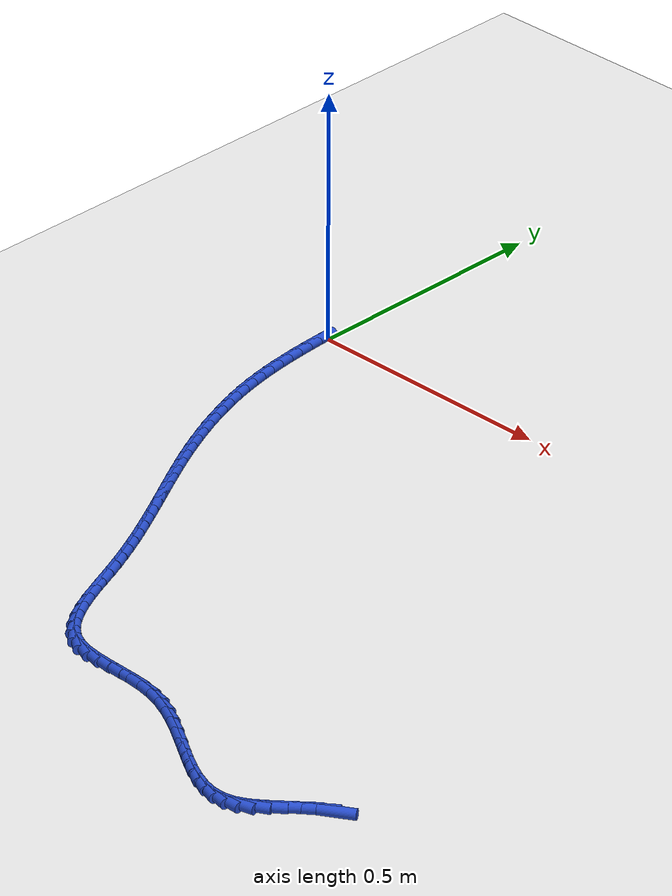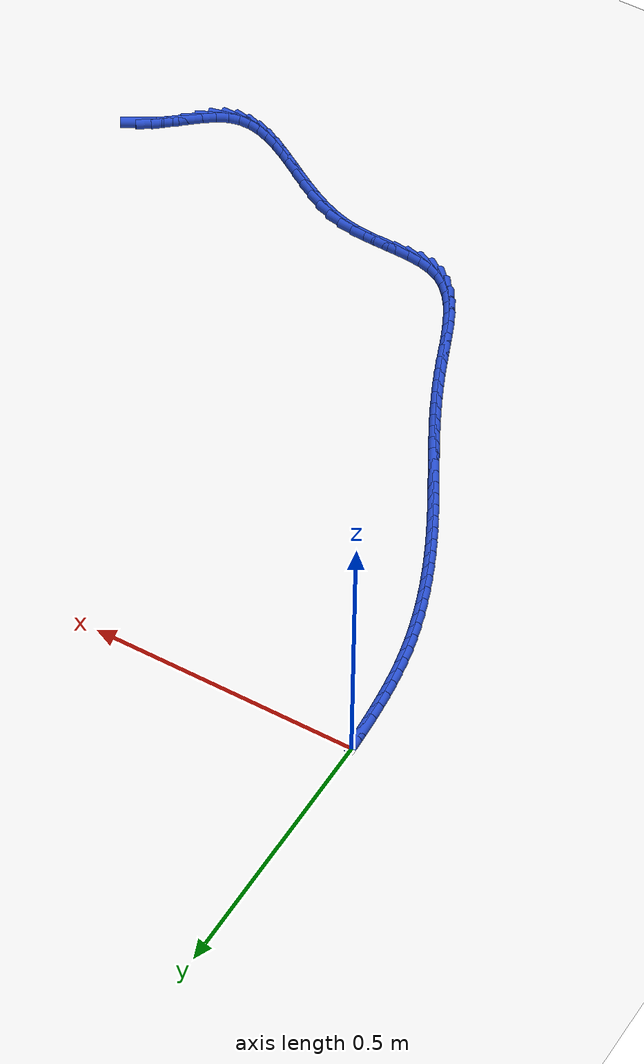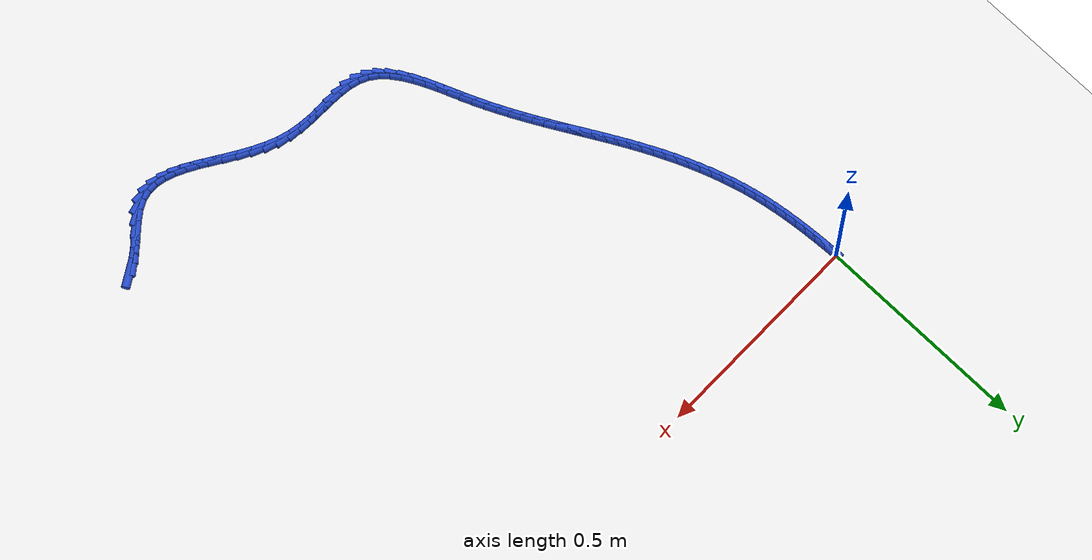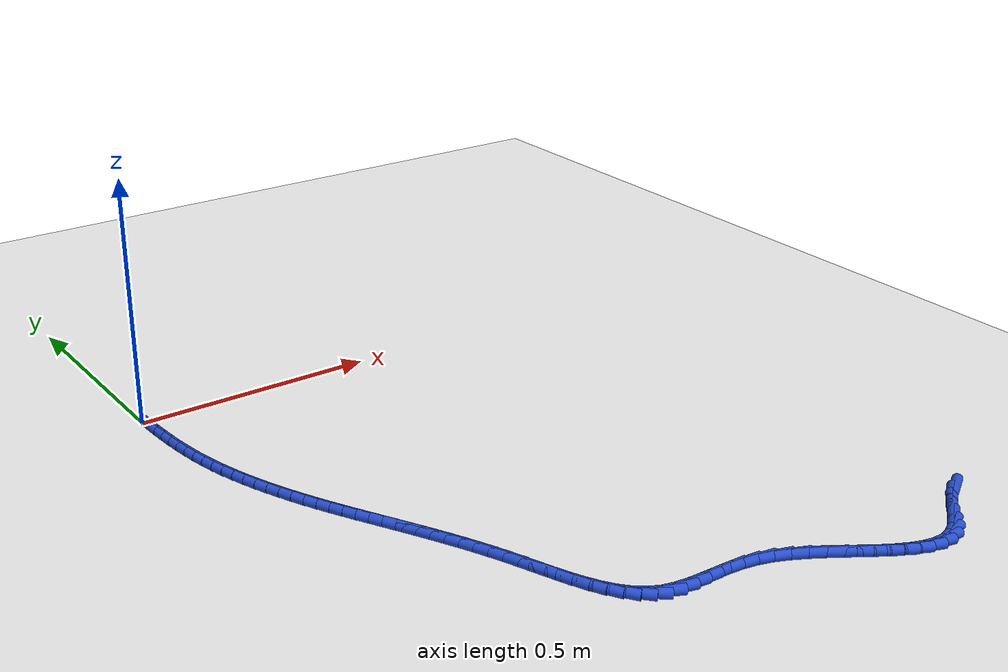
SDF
<sdf version="1.6">
 <world name="default">
  <model name="ground_plane">
   <static>1</static>
   <link name="link">
    <collision name="collision">
     <geometry><plane><normal>0 0 1</normal><size>100 100</size></plane></geometry>
     <surface><friction><ode><mu>100</mu><mu2>50</mu2></ode></friction></surface>
    </collision>
    <visual name="visual">
     <cast_shadows>0</cast_shadows>
     <geometry><plane><normal>0 0 1</normal><size>100 100</size></plane></geometry>
     <material>
      <script><uri>file://media/materials/scripts/gazebo.material</uri><name>Gazebo/WhiteGlow</name></script>
     </material>
    </visual>
   </link>
  </model>
  <model name="line">
   <link name="link_202">
    <pose>1.084743514705425 -1.0791629400889569 0.01 0 1.57 0.5356293100034848</pose>
    <collision name="collision">
     <geometry><cylinder><radius>0.01</radius><length>0.08</length></cylinder></geometry>
    </collision>
    <visual name="visual">
     <material>
      <script><name>Gazebo/Blue</name><uri>file://media/materials/scripts/gazebo.material</uri></script>
     </material>
     <geometry><cylinder><radius>0.01</radius><length>0.08</length></cylinder></geometry>
    </visual>
   </link>
   <link name="link_203">
    <pose>1.0611634195019979 -1.0931578200143086 0.01 0 1.57 0.6569418763664222</pose>
    <collision name="collision">
     <geometry><cylinder><radius>0.01</radius><length>0.08</length></cylinder></geometry>
    </collision>
    <visual name="visual">
     <material>
      <script><name>Gazebo/Blue</name><uri>file://media/materials/scripts/gazebo.material</uri></script>
     </material>
     <geometry><cylinder><radius>0.01</radius><length>0.08</length></cylinder></geometry>
    </visual>
   </link>
   <link name="link_204">
    <pose>1.038638782207033 -1.1105291885735058 0.01 0 1.57 0.711244575524754</pose>
    <collision name="collision">
     <geometry><cylinder><radius>0.01</radius><length>0.08</length></cylinder></geometry>
    </collision>
    <visual name="visual">
     <material>
      <script><name>Gazebo/Blue</name><uri>file://media/materials/scripts/gazebo.material</uri></script>
     </material>
     <geometry><cylinder><radius>0.01</radius><length>0.08</length></cylinder></geometry>
    </visual>
   </link>
   <link name="link_205">
    <pose>1.016847159753608 -1.1293069215267824 0.01 0 1.57 0.7055813358502889</pose>
    <collision name="collision">
     <geometry><cylinder><radius>0.01</radius><length>0.08</length></cylinder></geometry>
    </collision>
    <visual name="visual">
     <material>
      <script><name>Gazebo/Blue</name><uri>file://media/materials/scripts/gazebo.material</uri></script>
     </material>
     <geometry><cylinder><radius>0.01</radius><length>0.08</length></cylinder></geometry>
    </visual>
   </link>
   <link name="link_206">
    <pose>0.9954661090748025 -1.14752089463437 0.01 0 1.57 0.6347395699183197</pose>
    <collision name="collision">
     <geometry><cylinder><radius>0.01</radius><length>0.08</length></cylinder></geometry>
    </collision>
    <visual name="visual">
     <material>
      <script><name>Gazebo/Blue</name><uri>file://media/materials/scripts/gazebo.material</uri></script>
     </material>
     <geometry><cylinder><radius>0.01</radius><length>0.08</length></cylinder></geometry>
    </visual>
   </link>
   <link name="link_207">
    <pose>0.9741731871036939 -1.1632009836565023 0.01 0 1.57 0.47888440317415676</pose>
    <collision name="collision">
     <geometry><cylinder><radius>0.01</radius><length>0.08</length></cylinder></geometry>
    </collision>
    <visual name="visual">
     <material>
      <script><name>Gazebo/Blue</name><uri>file://media/materials/scripts/gazebo.material</uri></script>
     </material>
     <geometry><cylinder><radius>0.01</radius><length>0.08</length></cylinder></geometry>
    </visual>
   </link>
   <link name="link_208">
    <pose>0.9526460305774485 -1.1743777477755124 0.01 0 1.57 0.23775193257106658</pose>
    <collision name="collision">
     <geometry><cylinder><radius>0.01</radius><length>0.08</length></cylinder></geometry>
    </collision>
    <visual name="visual">
     <material>
      <script><name>Gazebo/Blue</name><uri>file://media/materials/scripts/gazebo.material</uri></script>
     </material>
     <geometry><cylinder><radius>0.01</radius><length>0.08</length></cylinder></geometry>
    </visual>
   </link>
   <link name="link_209">
    <pose>0.9306358248337919 -1.179711597873813 0.01 0 1.57 -0.002389771905242839</pose>
    <collision name="collision">
     <geometry><cylinder><radius>0.01</radius><length>0.08</length></cylinder></geometry>
    </collision>
    <visual name="visual">
     <material>
      <script><name>Gazebo/Blue</name><uri>file://media/materials/scripts/gazebo.material</uri></script>
     </material>
     <geometry><cylinder><radius>0.01</radius><length>0.08</length></cylinder></geometry>
    </visual>
   </link>
   <link name="link_210">
    <pose>0.9081033369702856 -1.1796577502648535 0.01 0 1.57 -0.1997865084663508</pose>
    <collision name="collision">
     <geometry><cylinder><radius>0.01</radius><length>0.08</length></cylinder></geometry>
    </collision>
    <visual name="visual">
     <material>
      <script><name>Gazebo/Blue</name><uri>file://media/materials/scripts/gazebo.material</uri></script>
     </material>
     <geometry><cylinder><radius>0.01</radius><length>0.08</length></cylinder></geometry>
    </visual>
   </link>
   <link name="link_211">
    <pose>0.8850464188764705 -1.1749890060848833 0.01 0 1.57 -0.3463354275869764</pose>
    <collision name="collision">
     <geometry><cylinder><radius>0.01</radius><length>0.08</length></cylinder></geometry>
    </collision>
    <visual name="visual">
     <material>
      <script><name>Gazebo/Blue</name><uri>file://media/materials/scripts/gazebo.material</uri></script>
     </material>
     <geometry><cylinder><radius>0.01</radius><length>0.08</length></cylinder></geometry>
    </visual>
   </link>
   <link name="link_212">
    <pose>0.8614629224418897 -1.1664781664701505 0.01 0 1.57 -0.44773119129558614</pose>
    <collision name="collision">
     <geometry><cylinder><radius>0.01</radius><length>0.08</length></cylinder></geometry>
    </collision>
    <visual name="visual">
     <material>
      <script><name>Gazebo/Blue</name><uri>file://media/materials/scripts/gazebo.material</uri></script>
     </material>
     <geometry><cylinder><radius>0.01</radius><length>0.08</length></cylinder></geometry>
    </visual>
   </link>
   <link name="link_213">
    <pose>0.8373506995560841 -1.1548980325569036 0.01 0 1.57 -0.5128481769981719</pose>
    <collision name="collision">
     <geometry><cylinder><radius>0.01</radius><length>0.08</length></cylinder></geometry>
    </collision>
    <visual name="visual">
     <material>
      <script><name>Gazebo/Blue</name><uri>file://media/materials/scripts/gazebo.material</uri></script>
     </material>
     <geometry><cylinder><radius>0.01</radius><length>0.08</length></cylinder></geometry>
    </visual>
   </link>
   <link name="link_214">
    <pose>0.8127076021085967 -1.141021405481391 0.01 0 1.57 -0.5489805522195436</pose>
    <collision name="collision">
     <geometry><cylinder><radius>0.01</radius><length>0.08</length></cylinder></geometry>
    </collision>
    <visual name="visual">
     <material>
      <script><name>Gazebo/Blue</name><uri>file://media/materials/scripts/gazebo.material</uri></script>
     </material>
     <geometry><cylinder><radius>0.01</radius><length>0.08</length></cylinder></geometry>
    </visual>
   </link>
   <link name="link_215">
    <pose>0.787531481988969 -1.1256210863798615 0.01 0 1.57 -0.5608797571258992</pose>
    <collision name="collision">
     <geometry><cylinder><radius>0.01</radius><length>0.08</length></cylinder></geometry>
    </collision>
    <visual name="visual">
     <material>
      <script><name>Gazebo/Blue</name><uri>file://media/materials/scripts/gazebo.material</uri></script>
     </material>
     <geometry><cylinder><radius>0.01</radius><length>0.08</length></cylinder></geometry>
    </visual>
   </link>
   <link name="link_216">
    <pose>0.7618201910867424 -1.1094698763885629 0.01 0 1.57 -0.5510000735567151</pose>
    <collision name="collision">
     <geometry><cylinder><radius>0.01</radius><length>0.08</length></cylinder></geometry>
    </collision>
    <visual name="visual">
     <material>
      <script><name>Gazebo/Blue</name><uri>file://media/materials/scripts/gazebo.material</uri></script>
     </material>
     <geometry><cylinder><radius>0.01</radius><length>0.08</length></cylinder></geometry>
    </visual>
   </link>
   <link name="link_217">
    <pose>0.7355715812914605 -1.0933405766437447 0.01 0 1.57 -0.5199088531335979</pose>
    <collision name="collision">
     <geometry><cylinder><radius>0.01</radius><length>0.08</length></cylinder></geometry>
    </collision>
    <visual name="visual">
     <material>
      <script><name>Gazebo/Blue</name><uri>file://media/materials/scripts/gazebo.material</uri></script>
     </material>
     <geometry><cylinder><radius>0.01</radius><length>0.08</length></cylinder></geometry>
    </visual>
   </link>
   <link name="link_218">
    <pose>0.7087835044926634 -1.0780059882816544 0.01 0 1.57 -0.466635622204465</pose>
    <collision name="collision">
     <geometry><cylinder><radius>0.01</radius><length>0.08</length></cylinder></geometry>
    </collision>
    <visual name="visual">
     <material>
      <script><name>Gazebo/Blue</name><uri>file://media/materials/scripts/gazebo.material</uri></script>
     </material>
     <geometry><cylinder><radius>0.01</radius><length>0.08</length></cylinder></geometry>
    </visual>
   </link>
   <link name="link_219">
    <pose>0.6814538125798948 -1.0642389124385414 0.01 0 1.57 -0.38905563143080746</pose>
    <collision name="collision">
     <geometry><cylinder><radius>0.01</radius><length>0.08</length></cylinder></geometry>
    </collision>
    <visual name="visual">
     <material>
      <script><name>Gazebo/Blue</name><uri>file://media/materials/scripts/gazebo.material</uri></script>
     </material>
     <geometry><cylinder><radius>0.01</radius><length>0.08</length></cylinder></geometry>
    </visual>
   </link>
   <link name="link_220">
    <pose>0.6535803574426953 -1.0528121502506533 0.01 0 1.57 -0.2846203969204903</pose>
    <collision name="collision">
     <geometry><cylinder><radius>0.01</radius><length>0.08</length></cylinder></geometry>
    </collision>
    <visual name="visual">
     <material>
      <script><name>Gazebo/Blue</name><uri>file://media/materials/scripts/gazebo.material</uri></script>
     </material>
     <geometry><cylinder><radius>0.01</radius><length>0.08</length></cylinder></geometry>
    </visual>
   </link>
   <link name="link_221">
    <pose>0.6251611556473456 -1.044497730170559 0.01 0 1.57 -0.16750694427969978</pose>
    <collision name="collision">
     <geometry><cylinder><radius>0.01</radius><length>0.08</length></cylinder></geometry>
    </collision>
    <visual name="visual">
     <material>
      <script><name>Gazebo/Blue</name><uri>file://media/materials/scripts/gazebo.material</uri></script>
     </material>
     <geometry><cylinder><radius>0.01</radius><length>0.08</length></cylinder></geometry>
    </visual>
   </link>
   <link name="link_222">
    <pose>0.5962904979343345 -1.0396159502832012 0.01 0 1.57 -0.08058516927562474</pose>
    <collision name="collision">
     <geometry><cylinder><radius>0.01</radius><length>0.08</length></cylinder></geometry>
    </collision>
    <visual name="visual">
     <material>
      <script><name>Gazebo/Blue</name><uri>file://media/materials/scripts/gazebo.material</uri></script>
     </material>
     <geometry><cylinder><radius>0.01</radius><length>0.08</length></cylinder></geometry>
    </visual>
   </link>
   <link name="link_223">
    <pose>0.5673207159215206 -1.0372763488684966 0.01 0 1.57 -0.030980431589471866</pose>
    <collision name="collision">
     <geometry><cylinder><radius>0.01</radius><length>0.08</length></cylinder></geometry>
    </collision>
    <visual name="visual">
     <material>
      <script><name>Gazebo/Blue</name><uri>file://media/materials/scripts/gazebo.material</uri></script>
     </material>
     <geometry><cylinder><radius>0.01</radius><length>0.08</length></cylinder></geometry>
    </visual>
   </link>
   <link name="link_224">
    <pose>0.5386469206163207 -1.0363877380040138 0.01 0 1.57 -0.01889543703541139</pose>
    <collision name="collision">
     <geometry><cylinder><radius>0.01</radius><length>0.08</length></cylinder></geometry>
    </collision>
    <visual name="visual">
     <material>
      <script><name>Gazebo/Blue</name><uri>file://media/materials/scripts/gazebo.material</uri></script>
     </material>
     <geometry><cylinder><radius>0.01</radius><length>0.08</length></cylinder></geometry>
    </visual>
   </link>
   <link name="link_225">
    <pose>0.5106642230261554 -1.0358589297673224 0.01 0 1.57 -0.04681921885935837</pose>
    <collision name="collision">
     <geometry><cylinder><radius>0.01</radius><length>0.08</length></cylinder></geometry>
    </collision>
    <visual name="visual">
     <material>
      <script><name>Gazebo/Blue</name><uri>file://media/materials/scripts/gazebo.material</uri></script>
     </material>
     <geometry><cylinder><radius>0.01</radius><length>0.08</length></cylinder></geometry>
    </visual>
   </link>
   <link name="link_226">
    <pose>0.4837677341584423 -1.0345987362359905 0.01 0 1.57 -0.12070665743941504</pose>
    <collision name="collision">
     <geometry><cylinder><radius>0.01</radius><length>0.08</length></cylinder></geometry>
    </collision>
    <visual name="visual">
     <material>
      <script><name>Gazebo/Blue</name><uri>file://media/materials/scripts/gazebo.material</uri></script>
     </material>
     <geometry><cylinder><radius>0.01</radius><length>0.08</length></cylinder></geometry>
    </visual>
   </link>
   <link name="link_227">
    <pose>0.4583525650205994 -1.031515969487588 0.01 0 1.57 -0.2494455983019754</pose>
    <collision name="collision">
     <geometry><cylinder><radius>0.01</radius><length>0.08</length></cylinder></geometry>
    </collision>
    <visual name="visual">
     <material>
      <script><name>Gazebo/Blue</name><uri>file://media/materials/scripts/gazebo.material</uri></script>
     </material>
     <geometry><cylinder><radius>0.01</radius><length>0.08</length></cylinder></geometry>
    </visual>
   </link>
   <link name="link_228">
    <pose>0.4348138266200466 -1.0255194415996831 0.01 0 1.57 -0.43880900415434265</pose>
    <collision name="collision">
     <geometry><cylinder><radius>0.01</radius><length>0.08</length></cylinder></geometry>
    </collision>
    <visual name="visual">
     <material>
      <script><name>Gazebo/Blue</name><uri>file://media/materials/scripts/gazebo.material</uri></script>
     </material>
     <geometry><cylinder><radius>0.01</radius><length>0.08</length></cylinder></geometry>
    </visual>
   </link>
   <link name="link_229">
    <pose>0.41353955194666714 -1.0155348632685117 0.01 0 1.57 -0.648946708486714</pose>
    <collision name="collision">
     <geometry><cylinder><radius>0.01</radius><length>0.08</length></cylinder></geometry>
    </collision>
    <visual name="visual">
     <material>
      <script><name>Gazebo/Blue</name><uri>file://media/materials/scripts/gazebo.material</uri></script>
     </material>
     <geometry><cylinder><radius>0.01</radius><length>0.08</length></cylinder></geometry>
    </visual>
   </link>
   <link name="link_230">
    <pose>0.39462486918274065 -1.0011872492857627 0.01 0 1.57 -0.8225453089431551</pose>
    <collision name="collision">
     <geometry><cylinder><radius>0.01</radius><length>0.08</length></cylinder></geometry>
    </collision>
    <visual name="visual">
     <material>
      <script><name>Gazebo/Blue</name><uri>file://media/materials/scripts/gazebo.material</uri></script>
     </material>
     <geometry><cylinder><radius>0.01</radius><length>0.08</length></cylinder></geometry>
    </visual>
   </link>
   <link name="link_231">
    <pose>0.37777381524743 -0.9830353366453168 0.01 0 1.57 -0.9544954350681014</pose>
    <collision name="collision">
     <geometry><cylinder><radius>0.01</radius><length>0.08</length></cylinder></geometry>
    </collision>
    <visual name="visual">
     <material>
      <script><name>Gazebo/Blue</name><uri>file://media/materials/scripts/gazebo.material</uri></script>
     </material>
     <geometry><cylinder><radius>0.01</radius><length>0.08</length></cylinder></geometry>
    </visual>
   </link>
   <link name="link_232">
    <pose>0.36266319583575685 -0.961702876318546 0.01 0 1.57 -1.0503140492254288</pose>
    <collision name="collision">
     <geometry><cylinder><radius>0.01</radius><length>0.08</length></cylinder></geometry>
    </collision>
    <visual name="visual">
     <material>
      <script><name>Gazebo/Blue</name><uri>file://media/materials/scripts/gazebo.material</uri></script>
     </material>
     <geometry><cylinder><radius>0.01</radius><length>0.08</length></cylinder></geometry>
    </visual>
   </link>
   <link name="link_233">
    <pose>0.3489698166427408 -0.9378136192768194 0.01 0 1.57 -1.1168557290714018</pose>
    <collision name="collision">
     <geometry><cylinder><radius>0.01</radius><length>0.08</length></cylinder></geometry>
    </collision>
    <visual name="visual">
     <material>
      <script><name>Gazebo/Blue</name><uri>file://media/materials/scripts/gazebo.material</uri></script>
     </material>
     <geometry><cylinder><radius>0.01</radius><length>0.08</length></cylinder></geometry>
    </visual>
   </link>
   <link name="link_234">
    <pose>0.33637048336340314 -0.9119913164915091 0.01 0 1.57 -1.1596733091758638</pose>
    <collision name="collision">
     <geometry><cylinder><radius>0.01</radius><length>0.08</length></cylinder></geometry>
    </collision>
    <visual name="visual">
     <material>
      <script><name>Gazebo/Blue</name><uri>file://media/materials/scripts/gazebo.material</uri></script>
     </material>
     <geometry><cylinder><radius>0.01</radius><length>0.08</length></cylinder></geometry>
    </visual>
   </link>
   <link name="link_235">
    <pose>0.32454200169276404 -0.8848597189339847 0.01 0 1.57 -1.1824442047931623</pose>
    <collision name="collision">
     <geometry><cylinder><radius>0.01</radius><length>0.08</length></cylinder></geometry>
    </collision>
    <visual name="visual">
     <material>
      <script><name>Gazebo/Blue</name><uri>file://media/materials/scripts/gazebo.material</uri></script>
     </material>
     <geometry><cylinder><radius>0.01</radius><length>0.08</length></cylinder></geometry>
    </visual>
   </link>
   <link name="link_236">
    <pose>0.31316117732584375 -0.8570425775756163 0.01 0 1.57 -1.187053923059824</pose>
    <collision name="collision">
     <geometry><cylinder><radius>0.01</radius><length>0.08</length></cylinder></geometry>
    </collision>
    <visual name="visual">
     <material>
      <script><name>Gazebo/Blue</name><uri>file://media/materials/scripts/gazebo.material</uri></script>
     </material>
     <geometry><cylinder><radius>0.01</radius><length>0.08</length></cylinder></geometry>
    </visual>
   </link>
   <link name="link_237">
    <pose>0.30190481595766344 -0.8291636433877756 0.01 0 1.57 -1.1741259314890653</pose>
    <collision name="collision">
     <geometry><cylinder><radius>0.01</radius><length>0.08</length></cylinder></geometry>
    </collision>
    <visual name="visual">
     <material>
      <script><name>Gazebo/Blue</name><uri>file://media/materials/scripts/gazebo.material</uri></script>
     </material>
     <geometry><cylinder><radius>0.01</radius><length>0.08</length></cylinder></geometry>
    </visual>
   </link>
   <link name="link_238">
    <pose>0.290456774262266 -0.8018331252970363 0.01 0 1.57 -1.1525220569501593</pose>
    <collision name="collision">
     <geometry><cylinder><radius>0.01</radius><length>0.08</length></cylinder></geometry>
    </collision>
    <visual name="visual">
     <material>
      <script><name>Gazebo/Blue</name><uri>file://media/materials/scripts/gazebo.material</uri></script>
     </material>
     <geometry><cylinder><radius>0.01</radius><length>0.08</length></cylinder></geometry>
    </visual>
   </link>
   <link name="link_239">
    <pose>0.2786748020801921 -0.7753272546301838 0.01 0 1.57 -1.1322608382746437</pose>
    <collision name="collision">
     <geometry><cylinder><radius>0.01</radius><length>0.08</length></cylinder></geometry>
    </collision>
    <visual name="visual">
     <material>
      <script><name>Gazebo/Blue</name><uri>file://media/materials/scripts/gazebo.material</uri></script>
     </material>
     <geometry><cylinder><radius>0.01</radius><length>0.08</length></cylinder></geometry>
    </visual>
   </link>
   <link name="link_240">
    <pose>0.2665973144292743 -0.7495752788531953 0.01 0 1.57 -1.1140708542823086</pose>
    <collision name="collision">
     <geometry><cylinder><radius>0.01</radius><length>0.08</length></cylinder></geometry>
    </collision>
    <visual name="visual">
     <material>
      <script><name>Gazebo/Blue</name><uri>file://media/materials/scripts/gazebo.material</uri></script>
     </material>
     <geometry><cylinder><radius>0.01</radius><length>0.08</length></cylinder></geometry>
    </visual>
   </link>
   <link name="link_241">
    <pose>0.2542711323282645 -0.7244903009447977 0.01 0 1.57 -1.098191309919903</pose>
    <collision name="collision">
     <geometry><cylinder><radius>0.01</radius><length>0.08</length></cylinder></geometry>
    </collision>
    <visual name="visual">
     <material>
      <script><name>Gazebo/Blue</name><uri>file://media/materials/scripts/gazebo.material</uri></script>
     </material>
     <geometry><cylinder><radius>0.01</radius><length>0.08</length></cylinder></geometry>
    </visual>
   </link>
   <link name="link_242">
    <pose>0.24174307679591228 -0.6999854238837139 0.01 0 1.57 -1.0848394272943667</pose>
    <collision name="collision">
     <geometry><cylinder><radius>0.01</radius><length>0.08</length></cylinder></geometry>
    </collision>
    <visual name="visual">
     <material>
      <script><name>Gazebo/Blue</name><uri>file://media/materials/scripts/gazebo.material</uri></script>
     </material>
     <geometry><cylinder><radius>0.01</radius><length>0.08</length></cylinder></geometry>
    </visual>
   </link>
   <link name="link_243">
    <pose>0.22905996885096935 -0.6759737506486702 0.01 0 1.57 -1.0742065730766062</pose>
    <collision name="collision">
     <geometry><cylinder><radius>0.01</radius><length>0.08</length></cylinder></geometry>
    </collision>
    <visual name="visual">
     <material>
      <script><name>Gazebo/Blue</name><uri>file://media/materials/scripts/gazebo.material</uri></script>
     </material>
     <geometry><cylinder><radius>0.01</radius><length>0.08</length></cylinder></geometry>
    </visual>
   </link>
   <link name="link_244">
    <pose>0.21626862951218537 -0.6523683842183894 0.01 0 1.57 -1.0664550572085942</pose>
    <collision name="collision">
     <geometry><cylinder><radius>0.01</radius><length>0.08</length></cylinder></geometry>
    </collision>
    <visual name="visual">
     <material>
      <script><name>Gazebo/Blue</name><uri>file://media/materials/scripts/gazebo.material</uri></script>
     </material>
     <geometry><cylinder><radius>0.01</radius><length>0.08</length></cylinder></geometry>
    </visual>
   </link>
   <link name="link_245">
    <pose>0.2034158797983119 -0.6290824275715982 0.01 0 1.57 -1.0617154955620884</pose>
    <collision name="collision">
     <geometry><cylinder><radius>0.01</radius><length>0.08</length></cylinder></geometry>
    </collision>
    <visual name="visual">
     <material>
      <script><name>Gazebo/Blue</name><uri>file://media/materials/scripts/gazebo.material</uri></script>
     </material>
     <geometry><cylinder><radius>0.01</radius><length>0.08</length></cylinder></geometry>
    </visual>
   </link>
   <link name="link_246">
    <pose>0.19054854072809937 -0.6060289836870202 0.01 0 1.57 -1.0600845944059016</pose>
    <collision name="collision">
     <geometry><cylinder><radius>0.01</radius><length>0.08</length></cylinder></geometry>
    </collision>
    <visual name="visual">
     <material>
      <script><name>Gazebo/Blue</name><uri>file://media/materials/scripts/gazebo.material</uri></script>
     </material>
     <geometry><cylinder><radius>0.01</radius><length>0.08</length></cylinder></geometry>
    </visual>
   </link>
   <link name="link_247">
    <pose>0.17771343332029793 -0.5831211555433798 0.01 0 1.57 -1.0616232179464</pose>
    <collision name="collision">
     <geometry><cylinder><radius>0.01</radius><length>0.08</length></cylinder></geometry>
    </collision>
    <visual name="visual">
     <material>
      <script><name>Gazebo/Blue</name><uri>file://media/materials/scripts/gazebo.material</uri></script>
     </material>
     <geometry><cylinder><radius>0.01</radius><length>0.08</length></cylinder></geometry>
    </visual>
   </link>
   <link name="link_248">
    <pose>0.1649573785936591 -0.5602720461194028 0.01 0 1.57 -1.0663546409068674</pose>
    <collision name="collision">
     <geometry><cylinder><radius>0.01</radius><length>0.08</length></cylinder></geometry>
    </collision>
    <visual name="visual">
     <material>
      <script><name>Gazebo/Blue</name><uri>file://media/materials/scripts/gazebo.material</uri></script>
     </material>
     <geometry><cylinder><radius>0.01</radius><length>0.08</length></cylinder></geometry>
    </visual>
   </link>
   <link name="link_249">
    <pose>0.15232719756693278 -0.5373947583938126 0.01 0 1.57 -1.0742629601353804</pose>
    <collision name="collision">
     <geometry><cylinder><radius>0.01</radius><length>0.08</length></cylinder></geometry>
    </collision>
    <visual name="visual">
     <material>
      <script><name>Gazebo/Blue</name><uri>file://media/materials/scripts/gazebo.material</uri></script>
     </material>
     <geometry><cylinder><radius>0.01</radius><length>0.08</length></cylinder></geometry>
    </visual>
   </link>
   <link name="link_250">
    <pose>0.13986971125887043 -0.5144023953453354 0.01 0 1.57 -1.0852917321936995</pose>
    <collision name="collision">
     <geometry><cylinder><radius>0.01</radius><length>0.08</length></cylinder></geometry>
    </collision>
    <visual name="visual">
     <material>
      <script><name>Gazebo/Blue</name><uri>file://media/materials/scripts/gazebo.material</uri></script>
     </material>
     <geometry><cylinder><radius>0.01</radius><length>0.08</length></cylinder></geometry>
    </visual>
   </link>
   <link name="link_251">
    <pose>0.12763174068822206 -0.49120805995269456 0.01 0 1.57 -1.0993430035032687</pose>
    <collision name="collision">
     <geometry><cylinder><radius>0.01</radius><length>0.08</length></cylinder></geometry>
    </collision>
    <visual name="visual">
     <material>
      <script><name>Gazebo/Blue</name><uri>file://media/materials/scripts/gazebo.material</uri></script>
     </material>
     <geometry><cylinder><radius>0.01</radius><length>0.08</length></cylinder></geometry>
    </visual>
   </link>
   <link name="link_252">
    <pose>0.11566010687373897 -0.4677248551946159 0.01 0 1.57 -1.1162748480470843</pose>
    <collision name="collision">
     <geometry><cylinder><radius>0.01</radius><length>0.08</length></cylinder></geometry>
    </collision>
    <visual name="visual">
     <material>
      <script><name>Gazebo/Blue</name><uri>file://media/materials/scripts/gazebo.material</uri></script>
     </material>
     <geometry><cylinder><radius>0.01</radius><length>0.08</length></cylinder></geometry>
    </visual>
   </link>
   <link name="link_253">
    <pose>0.10400165931179353 -0.44386607178555704 0.01 0 1.57 -1.1355122454873192</pose>
    <collision name="collision">
     <geometry><cylinder><radius>0.01</radius><length>0.08</length></cylinder></geometry>
    </collision>
    <visual name="visual">
     <material>
      <script><name>Gazebo/Blue</name><uri>file://media/materials/scripts/gazebo.material</uri></script>
     </material>
     <geometry><cylinder><radius>0.01</radius><length>0.08</length></cylinder></geometry>
    </visual>
   </link>
   <link name="link_254">
    <pose>0.09270889578765247 -0.41958223619122964 0.01 0 1.57 -1.1561366253558385</pose>
    <collision name="collision">
     <geometry><cylinder><radius>0.01</radius><length>0.08</length></cylinder></geometry>
    </collision>
    <visual name="visual">
     <material>
      <script><name>Gazebo/Blue</name><uri>file://media/materials/scripts/gazebo.material</uri></script>
     </material>
     <geometry><cylinder><radius>0.01</radius><length>0.08</length></cylinder></geometry>
    </visual>
   </link>
   <link name="link_255">
    <pose>0.08184673030037684 -0.39490572746263625 0.01 0 1.57 -1.1781337924525699</pose>
    <collision name="collision">
     <geometry><cylinder><radius>0.01</radius><length>0.08</length></cylinder></geometry>
    </collision>
    <visual name="visual">
     <material>
      <script><name>Gazebo/Blue</name><uri>file://media/materials/scripts/gazebo.material</uri></script>
     </material>
     <geometry><cylinder><radius>0.01</radius><length>0.08</length></cylinder></geometry>
    </visual>
   </link>
   <link name="link_256">
    <pose>0.0714817284109053 -0.36987981239897794 0.01 0 1.57 -1.2016234832741777</pose>
    <collision name="collision">
     <geometry><cylinder><radius>0.01</radius><length>0.08</length></cylinder></geometry>
    </collision>
    <visual name="visual">
     <material>
      <script><name>Gazebo/Blue</name><uri>file://media/materials/scripts/gazebo.material</uri></script>
     </material>
     <geometry><cylinder><radius>0.01</radius><length>0.08</length></cylinder></geometry>
    </visual>
   </link>
   <link name="link_257">
    <pose>0.0616804556801756 -0.34454775779945396 0.01 0 1.57 -1.2267355925983052</pose>
    <collision name="collision">
     <geometry><cylinder><radius>0.01</radius><length>0.08</length></cylinder></geometry>
    </collision>
    <visual name="visual">
     <material>
      <script><name>Gazebo/Blue</name><uri>file://media/materials/scripts/gazebo.material</uri></script>
     </material>
     <geometry><cylinder><radius>0.01</radius><length>0.08</length></cylinder></geometry>
    </visual>
   </link>
   <link name="link_258">
    <pose>0.052509477669125455 -0.318952830463263 0.01 0 1.57 -1.2536103414976791</pose>
    <collision name="collision">
     <geometry><cylinder><radius>0.01</radius><length>0.08</length></cylinder></geometry>
    </collision>
    <visual name="visual">
     <material>
      <script><name>Gazebo/Blue</name><uri>file://media/materials/scripts/gazebo.material</uri></script>
     </material>
     <geometry><cylinder><radius>0.01</radius><length>0.08</length></cylinder></geometry>
    </visual>
   </link>
   <link name="link_259">
    <pose>0.04403535993869344 -0.2931382971896062 0.01 0 1.57 -1.2823980865897646</pose>
    <collision name="collision">
     <geometry><cylinder><radius>0.01</radius><length>0.08</length></cylinder></geometry>
    </collision>
    <visual name="visual">
     <material>
      <script><name>Gazebo/Blue</name><uri>file://media/materials/scripts/gazebo.material</uri></script>
     </material>
     <geometry><cylinder><radius>0.01</radius><length>0.08</length></cylinder></geometry>
    </visual>
   </link>
   <link name="link_260">
    <pose>0.03632466804981711 -0.2671474247776817 0.01 0 1.57 -1.3132586058404936</pose>
    <collision name="collision">
     <geometry><cylinder><radius>0.01</radius><length>0.08</length></cylinder></geometry>
    </collision>
    <visual name="visual">
     <material>
      <script><name>Gazebo/Blue</name><uri>file://media/materials/scripts/gazebo.material</uri></script>
     </material>
     <geometry><cylinder><radius>0.01</radius><length>0.08</length></cylinder></geometry>
    </visual>
   </link>
   <link name="link_261">
    <pose>0.029443967563434943 -0.2410234800266908 0.01 0 1.57 -1.3461821704019152</pose>
    <collision name="collision">
     <geometry><cylinder><radius>0.01</radius><length>0.08</length></cylinder></geometry>
    </collision>
    <visual name="visual">
     <material>
      <script><name>Gazebo/Blue</name><uri>file://media/materials/scripts/gazebo.material</uri></script>
     </material>
     <geometry><cylinder><radius>0.01</radius><length>0.08</length></cylinder></geometry>
    </visual>
   </link>
   <link name="link_262">
    <pose>0.02345437461444168 -0.21480730294330413 0.01 0 1.57 -1.3786205304206636</pose>
    <collision name="collision">
     <geometry><cylinder><radius>0.01</radius><length>0.08</length></cylinder></geometry>
    </collision>
    <visual name="visual">
     <material>
      <script><name>Gazebo/Blue</name><uri>file://media/materials/scripts/gazebo.material</uri></script>
     </material>
     <geometry><cylinder><radius>0.01</radius><length>0.08</length></cylinder></geometry>
    </visual>
   </link>
   <link name="link_263">
    <pose>0.018336316466864393 -0.18850380036484424 0.01 0 1.57 -1.4083914880787927</pose>
    <collision name="collision">
     <geometry><cylinder><radius>0.01</radius><length>0.08</length></cylinder></geometry>
    </collision>
    <visual name="visual">
     <material>
      <script><name>Gazebo/Blue</name><uri>file://media/materials/scripts/gazebo.material</uri></script>
     </material>
     <geometry><cylinder><radius>0.01</radius><length>0.08</length></cylinder></geometry>
    </visual>
   </link>
   <link name="link_264">
    <pose>0.014008538160624568 -0.16209041018798356 0.01 0 1.57 -1.4352562891840694</pose>
    <collision name="collision">
     <geometry><cylinder><radius>0.01</radius><length>0.08</length></cylinder></geometry>
    </collision>
    <visual name="visual">
     <material>
      <script><name>Gazebo/Blue</name><uri>file://media/materials/scripts/gazebo.material</uri></script>
     </material>
     <geometry><cylinder><radius>0.01</radius><length>0.08</length></cylinder></geometry>
    </visual>
   </link>
   <link name="link_265">
    <pose>0.010388222820878265 -0.135543874742002 0.01 0 1.57 -1.459078434458573</pose>
    <collision name="collision">
     <geometry><cylinder><radius>0.01</radius><length>0.08</length></cylinder></geometry>
    </collision>
    <visual name="visual">
     <material>
      <script><name>Gazebo/Blue</name><uri>file://media/materials/scripts/gazebo.material</uri></script>
     </material>
     <geometry><cylinder><radius>0.01</radius><length>0.08</length></cylinder></geometry>
    </visual>
   </link>
   <link name="link_266">
    <pose>0.007392553572781044 -0.10884093635617591 0.01 0 1.57 -1.4797687160575144</pose>
    <collision name="collision">
     <geometry><cylinder><radius>0.01</radius><length>0.08</length></cylinder></geometry>
    </collision>
    <visual name="visual">
     <material>
      <script><name>Gazebo/Blue</name><uri>file://media/materials/scripts/gazebo.material</uri></script>
     </material>
     <geometry><cylinder><radius>0.01</radius><length>0.08</length></cylinder></geometry>
    </visual>
   </link>
   <link name="link_267">
    <pose>0.004938713541488881 -0.08195833735978515 0.01 0 1.57 -1.497279820766522</pose>
    <collision name="collision">
     <geometry><cylinder><radius>0.01</radius><length>0.08</length></cylinder></geometry>
    </collision>
    <visual name="visual">
     <material>
      <script><name>Gazebo/Blue</name><uri>file://media/materials/scripts/gazebo.material</uri></script>
     </material>
     <geometry><cylinder><radius>0.01</radius><length>0.08</length></cylinder></geometry>
    </visual>
   </link>
   <link name="link_268">
    <pose>0.0029438858521574655 -0.054872820082107004 0.01 0 1.57 -1.5116003948941805</pose>
    <collision name="collision">
     <geometry><cylinder><radius>0.01</radius><length>0.08</length></cylinder></geometry>
    </collision>
    <visual name="visual">
     <material>
      <script><name>Gazebo/Blue</name><uri>file://media/materials/scripts/gazebo.material</uri></script>
     </material>
     <geometry><cylinder><radius>0.01</radius><length>0.08</length></cylinder></geometry>
    </visual>
   </link>
   <link name="link_269">
    <pose>0.0013252536299425475 -0.027561126852418773 0.01 0 1.57 -1.5227491738387646</pose>
    <collision name="collision">
     <geometry><cylinder><radius>0.01</radius><length>0.08</length></cylinder></geometry>
    </collision>
    <visual name="visual">
     <material>
      <script><name>Gazebo/Blue</name><uri>file://media/materials/scripts/gazebo.material</uri></script>
     </material>
     <geometry><cylinder><radius>0.01</radius><length>0.08</length></cylinder></geometry>
    </visual>
   </link>
  </model>
 </world>
</sdf>
